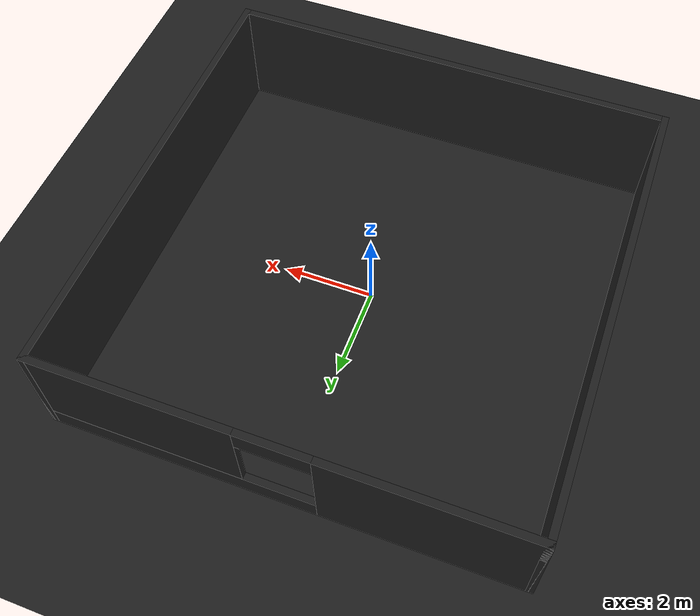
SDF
<sdf version="1.6">
 <world name="default">
  <light name="sun" type="directional">
   <pose>0 0 10 0 -0 0</pose>
   <diffuse>0.8 0.8 0.8 1</diffuse>
   <specular>0.1 0.1 0.1 1</specular>
   <attenuation>
    <range>1000</range>
    <constant>0.9</constant>
    <linear>0.01</linear>
    <quadratic>0.001</quadratic>
   </attenuation>
   <direction>-0.5 0.5 -1</direction>
  </light>
  <gravity>0 0 -9.8</gravity>
  <magnetic_field>6e-06 2.3e-05 -4.2e-05</magnetic_field>
  <atmosphere type="adiabatic"/>
  <physics name="default_physics" default="0" type="ode">
   <max_step_size>0.001</max_step_size>
   <real_time_factor>1</real_time_factor>
   <real_time_update_rate>1000</real_time_update_rate>
  </physics>
  <scene><ambient>0.4 0.4 0.4 1</ambient><background>0.7 0.7 0.7 1</background><shadows>1</shadows></scene>
  <spherical_coordinates>
   <surface_model>EARTH_WGS84</surface_model>
   <latitude_deg>0</latitude_deg>
   <longitude_deg>0</longitude_deg>
   <elevation>0</elevation>
   <heading_deg>0</heading_deg>
  </spherical_coordinates>
  <model name="hole">
   <link name="Wall_3">
    <pose>0 4.925 0 0 -0 0</pose>
    <visual name="Wall_3_Visual_0">
     <pose>-2.87826 0 1.25 0 -0 0</pose>
     <geometry><box><size>4.24348 0.15 2.5</size></box></geometry>
     <material>
      <script><uri>file://media/materials/scripts/gazebo.material</uri><name>Gazebo/Black</name></script>
      <ambient>1 1 1 1</ambient>
     </material>
    </visual>
    <collision name="Wall_3_Collision_0">
     <geometry><box><size>4.24348 0.15 2.5</size></box></geometry>
     <pose>-2.87826 0 1.25 0 -0 0</pose>
    </collision>
    <visual name="Wall_3_Visual_1">
     <pose>2.12174 0 0.25 0 -0 0</pose>
     <geometry><box><size>5.75652 0.15 0.5</size></box></geometry>
     <material>
      <script><uri>file://media/materials/scripts/gazebo.material</uri><name>Gazebo/Black</name></script>
      <ambient>1 1 1 1</ambient>
     </material>
    </visual>
    <collision name="Wall_3_Collision_1">
     <geometry><box><size>5.75652 0.15 0.5</size></box></geometry>
     <pose>2.12174 0 0.25 0 -0 0</pose>
    </collision>
    <visual name="Wall_3_Visual_2">
     <pose>2.87174 0 1.5 0 -0 0</pose>
     <geometry><box><size>4.25652 0.15 2</size></box></geometry>
     <material>
      <script><uri>file://media/materials/scripts/gazebo.material</uri><name>Gazebo/Black</name></script>
      <ambient>1 1 1 1</ambient>
     </material>
    </visual>
    <collision name="Wall_3_Collision_2">
     <geometry><box><size>4.25652 0.15 2</size></box></geometry>
     <pose>2.87174 0 1.5 0 -0 0</pose>
    </collision>
    <visual name="Wall_3_Visual_3">
     <pose>-0.006521 0 2.25 0 -0 0</pose>
     <geometry><box><size>1.5 0.15 0.5</size></box></geometry>
     <material>
      <script><uri>file://media/materials/scripts/gazebo.material</uri><name>Gazebo/Black</name></script>
      <ambient>1 1 1 1</ambient>
     </material>
    </visual>
    <collision name="Wall_3_Collision_3">
     <geometry><box><size>1.5 0.15 0.5</size></box></geometry>
     <pose>-0.006521 0 2.25 0 -0 0</pose>
    </collision>
   </link>
   <link name="Wall_4">
    <collision name="Wall_4_Collision">
     <geometry><box><size>10 0.15 2.5</size></box></geometry>
     <pose>0 0 1.25 0 -0 0</pose>
    </collision>
    <visual name="Wall_4_Visual">
     <pose>0 0 1.25 0 -0 0</pose>
     <geometry><box><size>10 0.15 2.5</size></box></geometry>
     <material>
      <script><uri>file://media/materials/scripts/gazebo.material</uri><name>Gazebo/Black</name></script>
      <ambient>1 1 1 1</ambient>
     </material>
    </visual>
    <pose>4.925 0 0 0 0 -1.5708</pose>
   </link>
   <link name="Wall_5">
    <collision name="Wall_5_Collision">
     <geometry><box><size>10 0.15 2.5</size></box></geometry>
     <pose>0 0 1.25 0 -0 0</pose>
    </collision>
    <visual name="Wall_5_Visual">
     <pose>0 0 1.25 0 -0 0</pose>
     <geometry><box><size>10 0.15 2.5</size></box></geometry>
     <material>
      <script><uri>file://media/materials/scripts/gazebo.material</uri><name>Gazebo/Black</name></script>
      <ambient>1 1 1 1</ambient>
     </material>
    </visual>
    <pose>0 -4.925 0 0 -0 3.14159</pose>
   </link>
   <link name="Wall_6">
    <collision name="Wall_6_Collision">
     <geometry><box><size>10 0.15 2.5</size></box></geometry>
     <pose>0 0 1.25 0 -0 0</pose>
    </collision>
    <visual name="Wall_6_Visual">
     <pose>0 0 1.25 0 -0 0</pose>
     <geometry><box><size>10 0.15 2.5</size></box></geometry>
     <material>
      <script><uri>file://media/materials/scripts/gazebo.material</uri><name>Gazebo/Black</name></script>
      <ambient>1 1 1 1</ambient>
     </material>
    </visual>
    <pose>-4.925 0 0 0 -0 1.5708</pose>
   </link>
   <static>1</static>
  </model>
  <model name="ground_plane_1">
   <static>1</static>
   <link name="link">
    <collision name="collision">
     <geometry><plane><normal>0 0 1</normal><size>100 100</size></plane></geometry>
     <surface><friction><ode><mu>100</mu><mu2>50</mu2></ode></friction></surface>
    </collision>
    <visual name="visual">
     <cast_shadows>0</cast_shadows>
     <geometry><plane><normal>0 0 1</normal><size>100 100</size></plane></geometry>
     <material>
      <script><uri>file://media/materials/scripts/gazebo.material</uri><name>Gazebo/Black</name></script>
     </material>
    </visual>
   </link>
  </model>
 </world>
</sdf>
